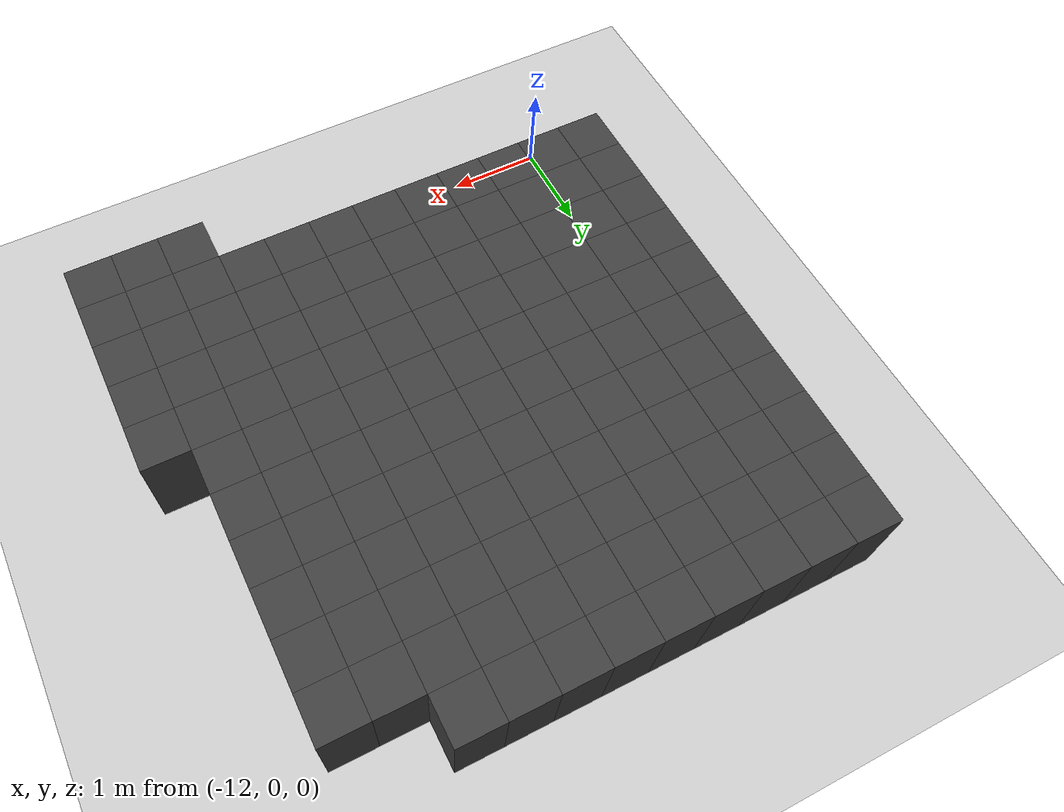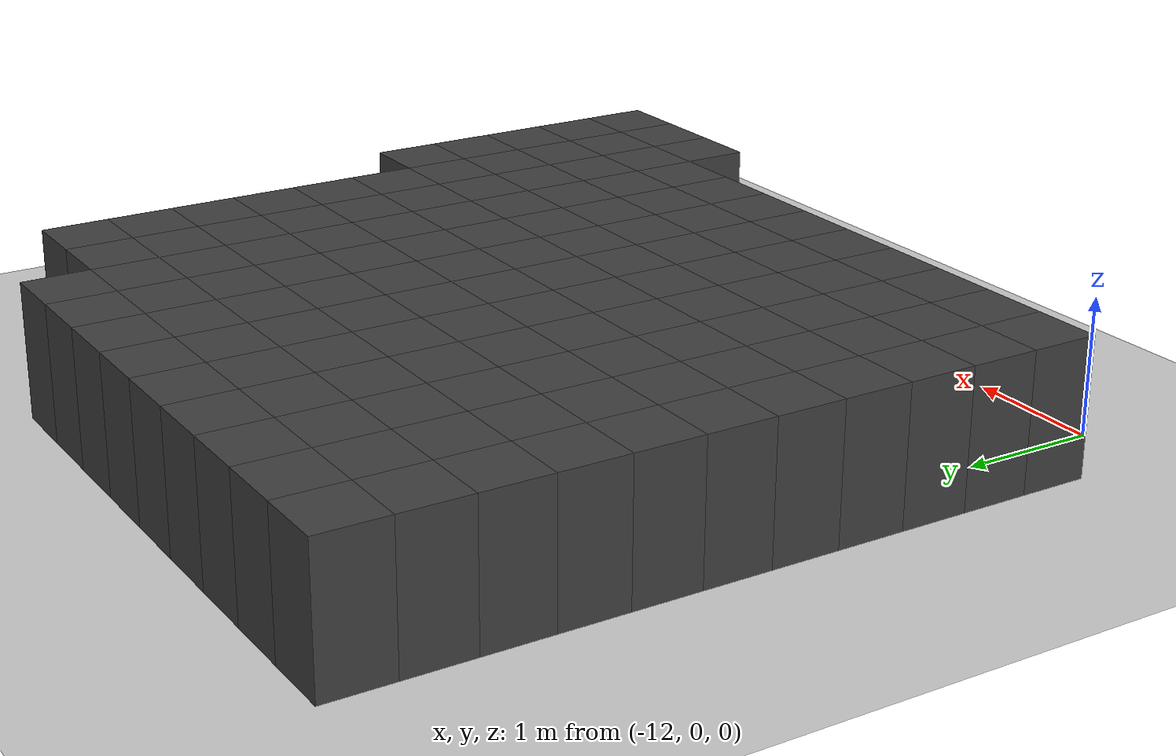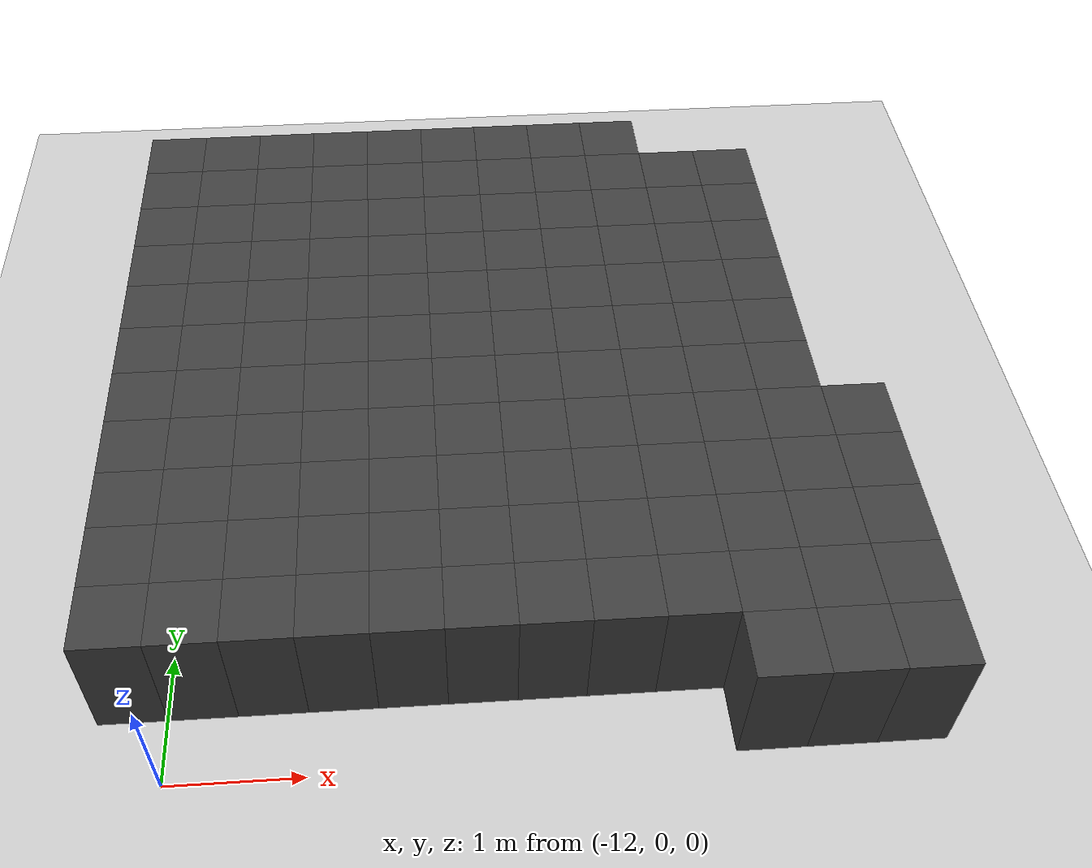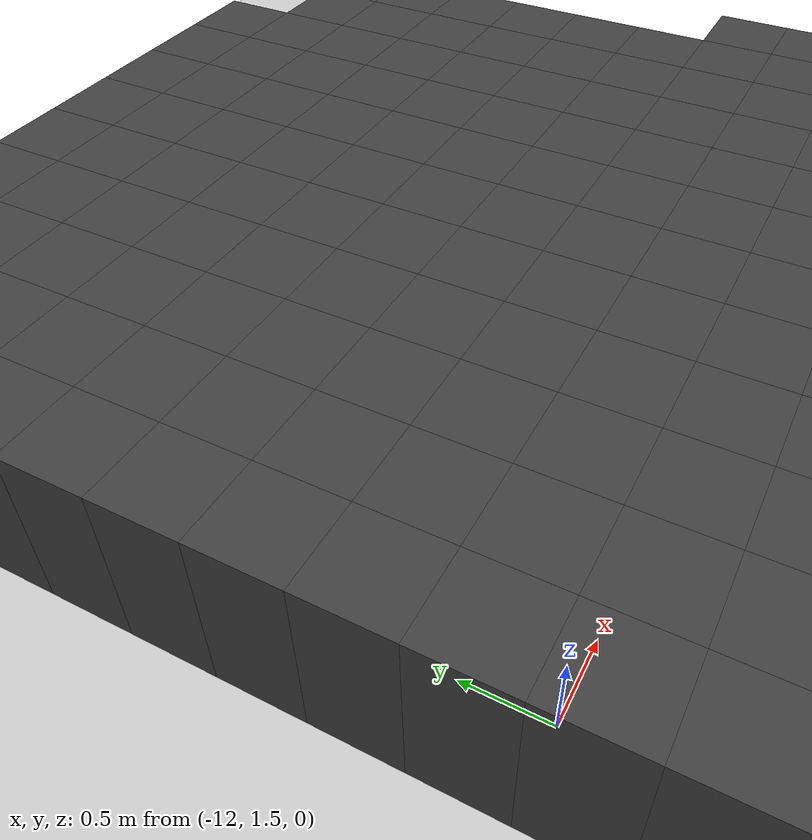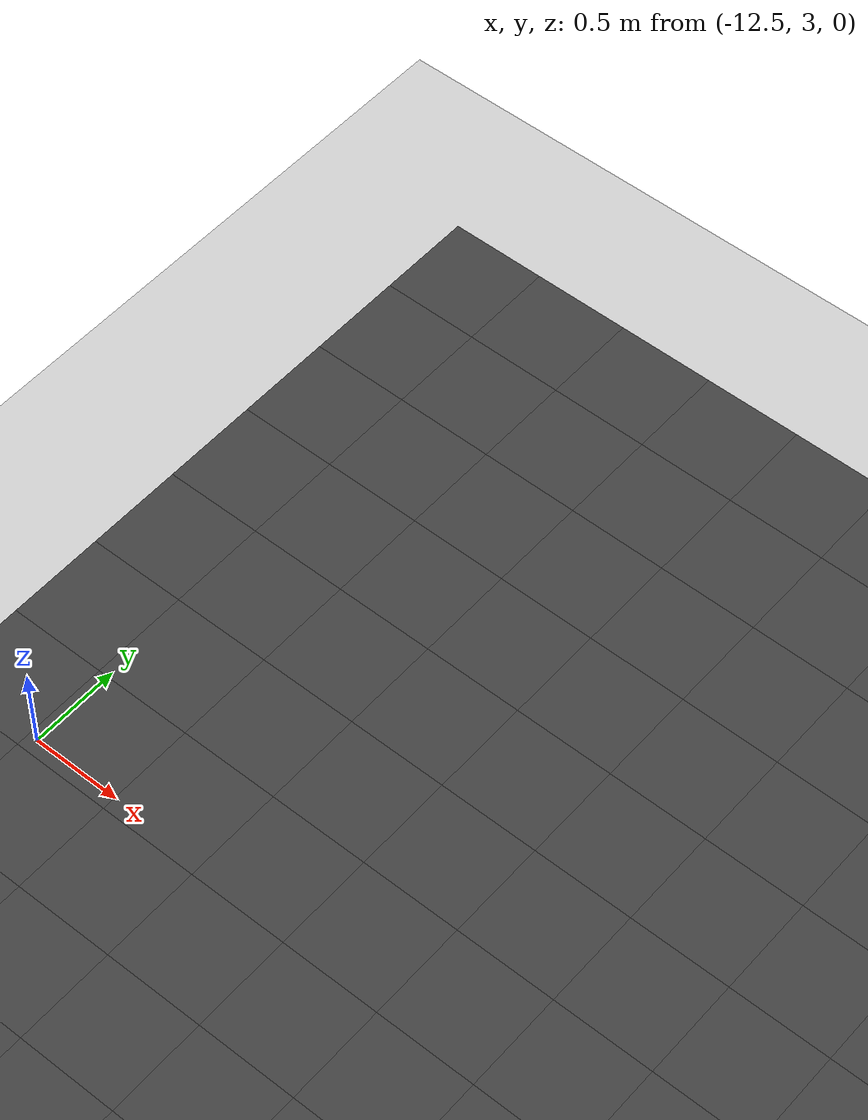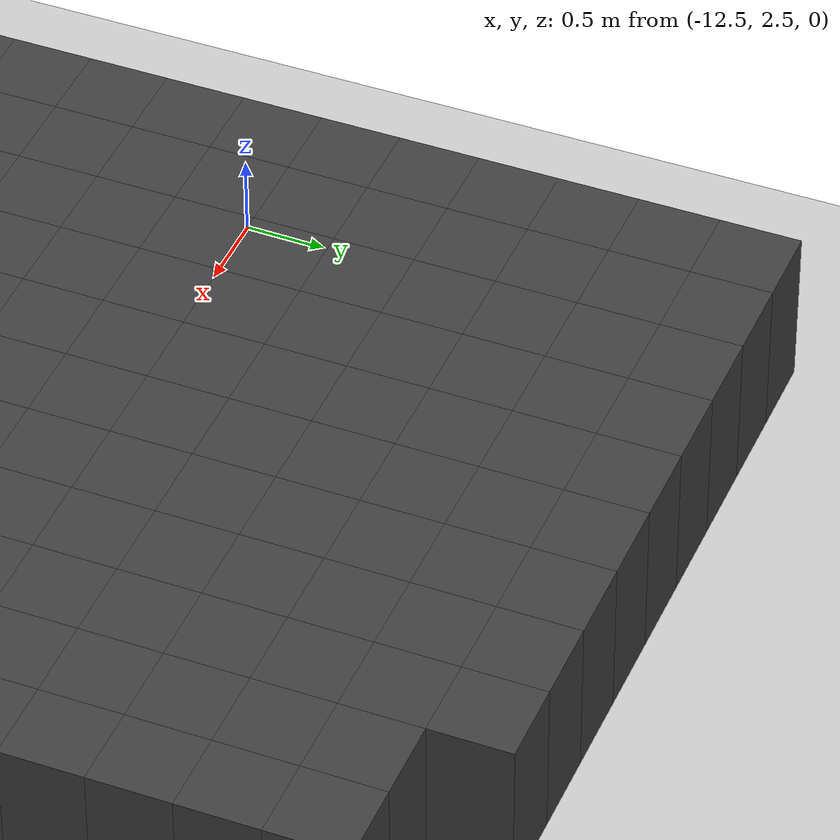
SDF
<sdf version="1.7">
 <world name="map_11779">
  <model name="ground_plane">
   <static>true</static>
   <link name="link">
    <collision name="collision">
     <geometry><plane><normal>0 0 1</normal><size>200 200</size></plane></geometry>
    </collision>
    <visual name="visual">
     <geometry><plane><normal>0 0 1</normal><size>200 200</size></plane></geometry>
     <material><ambient>0.8 0.8 0.8 1</ambient><diffuse>0.8 0.8 0.8 1</diffuse></material>
    </visual>
   </link>
  </model>
  <model name="maze_environment">
   <static>true</static>
   <link name="wall_538">
    <pose>-12.250 5.750 0.500 0 0 0</pose>
    <collision name="col"><geometry><box><size>0.5 0.5 1.0</size></box></geometry></collision>
    <visual name="vis">
     <geometry><box><size>0.5 0.5 1.0</size></box></geometry>
     <material><ambient>0.15 0.15 0.15 1</ambient><diffuse>0.25 0.25 0.25 1</diffuse></material>
    </visual>
   </link>
   <link name="wall_539">
    <pose>-11.750 5.750 0.500 0 0 0</pose>
    <collision name="col"><geometry><box><size>0.5 0.5 1.0</size></box></geometry></collision>
    <visual name="vis">
     <geometry><box><size>0.5 0.5 1.0</size></box></geometry>
     <material><ambient>0.15 0.15 0.15 1</ambient><diffuse>0.25 0.25 0.25 1</diffuse></material>
    </visual>
   </link>
   <link name="wall_540">
    <pose>-11.250 5.750 0.500 0 0 0</pose>
    <collision name="col"><geometry><box><size>0.5 0.5 1.0</size></box></geometry></collision>
    <visual name="vis">
     <geometry><box><size>0.5 0.5 1.0</size></box></geometry>
     <material><ambient>0.15 0.15 0.15 1</ambient><diffuse>0.25 0.25 0.25 1</diffuse></material>
    </visual>
   </link>
   <link name="wall_541">
    <pose>-10.750 5.750 0.500 0 0 0</pose>
    <collision name="col"><geometry><box><size>0.5 0.5 1.0</size></box></geometry></collision>
    <visual name="vis">
     <geometry><box><size>0.5 0.5 1.0</size></box></geometry>
     <material><ambient>0.15 0.15 0.15 1</ambient><diffuse>0.25 0.25 0.25 1</diffuse></material>
    </visual>
   </link>
   <link name="wall_542">
    <pose>-10.250 5.750 0.500 0 0 0</pose>
    <collision name="col"><geometry><box><size>0.5 0.5 1.0</size></box></geometry></collision>
    <visual name="vis">
     <geometry><box><size>0.5 0.5 1.0</size></box></geometry>
     <material><ambient>0.15 0.15 0.15 1</ambient><diffuse>0.25 0.25 0.25 1</diffuse></material>
    </visual>
   </link>
   <link name="wall_543">
    <pose>-9.750 5.750 0.500 0 0 0</pose>
    <collision name="col"><geometry><box><size>0.5 0.5 1.0</size></box></geometry></collision>
    <visual name="vis">
     <geometry><box><size>0.5 0.5 1.0</size></box></geometry>
     <material><ambient>0.15 0.15 0.15 1</ambient><diffuse>0.25 0.25 0.25 1</diffuse></material>
    </visual>
   </link>
   <link name="wall_544">
    <pose>-9.250 5.750 0.500 0 0 0</pose>
    <collision name="col"><geometry><box><size>0.5 0.5 1.0</size></box></geometry></collision>
    <visual name="vis">
     <geometry><box><size>0.5 0.5 1.0</size></box></geometry>
     <material><ambient>0.15 0.15 0.15 1</ambient><diffuse>0.25 0.25 0.25 1</diffuse></material>
    </visual>
   </link>
   <link name="wall_545">
    <pose>-8.750 5.750 0.500 0 0 0</pose>
    <collision name="col"><geometry><box><size>0.5 0.5 1.0</size></box></geometry></collision>
    <visual name="vis">
     <geometry><box><size>0.5 0.5 1.0</size></box></geometry>
     <material><ambient>0.15 0.15 0.15 1</ambient><diffuse>0.25 0.25 0.25 1</diffuse></material>
    </visual>
   </link>
   <link name="wall_546">
    <pose>-8.250 5.750 0.500 0 0 0</pose>
    <collision name="col"><geometry><box><size>0.5 0.5 1.0</size></box></geometry></collision>
    <visual name="vis">
     <geometry><box><size>0.5 0.5 1.0</size></box></geometry>
     <material><ambient>0.15 0.15 0.15 1</ambient><diffuse>0.25 0.25 0.25 1</diffuse></material>
    </visual>
   </link>
   <link name="wall_572">
    <pose>-12.250 5.250 0.500 0 0 0</pose>
    <collision name="col"><geometry><box><size>0.5 0.5 1.0</size></box></geometry></collision>
    <visual name="vis">
     <geometry><box><size>0.5 0.5 1.0</size></box></geometry>
     <material><ambient>0.15 0.15 0.15 1</ambient><diffuse>0.25 0.25 0.25 1</diffuse></material>
    </visual>
   </link>
   <link name="wall_573">
    <pose>-11.750 5.250 0.500 0 0 0</pose>
    <collision name="col"><geometry><box><size>0.5 0.5 1.0</size></box></geometry></collision>
    <visual name="vis">
     <geometry><box><size>0.5 0.5 1.0</size></box></geometry>
     <material><ambient>0.15 0.15 0.15 1</ambient><diffuse>0.25 0.25 0.25 1</diffuse></material>
    </visual>
   </link>
   <link name="wall_574">
    <pose>-11.250 5.250 0.500 0 0 0</pose>
    <collision name="col"><geometry><box><size>0.5 0.5 1.0</size></box></geometry></collision>
    <visual name="vis">
     <geometry><box><size>0.5 0.5 1.0</size></box></geometry>
     <material><ambient>0.15 0.15 0.15 1</ambient><diffuse>0.25 0.25 0.25 1</diffuse></material>
    </visual>
   </link>
   <link name="wall_575">
    <pose>-10.750 5.250 0.500 0 0 0</pose>
    <collision name="col"><geometry><box><size>0.5 0.5 1.0</size></box></geometry></collision>
    <visual name="vis">
     <geometry><box><size>0.5 0.5 1.0</size></box></geometry>
     <material><ambient>0.15 0.15 0.15 1</ambient><diffuse>0.25 0.25 0.25 1</diffuse></material>
    </visual>
   </link>
   <link name="wall_576">
    <pose>-10.250 5.250 0.500 0 0 0</pose>
    <collision name="col"><geometry><box><size>0.5 0.5 1.0</size></box></geometry></collision>
    <visual name="vis">
     <geometry><box><size>0.5 0.5 1.0</size></box></geometry>
     <material><ambient>0.15 0.15 0.15 1</ambient><diffuse>0.25 0.25 0.25 1</diffuse></material>
    </visual>
   </link>
   <link name="wall_577">
    <pose>-9.750 5.250 0.500 0 0 0</pose>
    <collision name="col"><geometry><box><size>0.5 0.5 1.0</size></box></geometry></collision>
    <visual name="vis">
     <geometry><box><size>0.5 0.5 1.0</size></box></geometry>
     <material><ambient>0.15 0.15 0.15 1</ambient><diffuse>0.25 0.25 0.25 1</diffuse></material>
    </visual>
   </link>
   <link name="wall_578">
    <pose>-9.250 5.250 0.500 0 0 0</pose>
    <collision name="col"><geometry><box><size>0.5 0.5 1.0</size></box></geometry></collision>
    <visual name="vis">
     <geometry><box><size>0.5 0.5 1.0</size></box></geometry>
     <material><ambient>0.15 0.15 0.15 1</ambient><diffuse>0.25 0.25 0.25 1</diffuse></material>
    </visual>
   </link>
   <link name="wall_579">
    <pose>-8.750 5.250 0.500 0 0 0</pose>
    <collision name="col"><geometry><box><size>0.5 0.5 1.0</size></box></geometry></collision>
    <visual name="vis">
     <geometry><box><size>0.5 0.5 1.0</size></box></geometry>
     <material><ambient>0.15 0.15 0.15 1</ambient><diffuse>0.25 0.25 0.25 1</diffuse></material>
    </visual>
   </link>
   <link name="wall_580">
    <pose>-8.250 5.250 0.500 0 0 0</pose>
    <collision name="col"><geometry><box><size>0.5 0.5 1.0</size></box></geometry></collision>
    <visual name="vis">
     <geometry><box><size>0.5 0.5 1.0</size></box></geometry>
     <material><ambient>0.15 0.15 0.15 1</ambient><diffuse>0.25 0.25 0.25 1</diffuse></material>
    </visual>
   </link>
   <link name="wall_581">
    <pose>-7.750 5.250 0.500 0 0 0</pose>
    <collision name="col"><geometry><box><size>0.5 0.5 1.0</size></box></geometry></collision>
    <visual name="vis">
     <geometry><box><size>0.5 0.5 1.0</size></box></geometry>
     <material><ambient>0.15 0.15 0.15 1</ambient><diffuse>0.25 0.25 0.25 1</diffuse></material>
    </visual>
   </link>
   <link name="wall_582">
    <pose>-7.250 5.250 0.500 0 0 0</pose>
    <collision name="col"><geometry><box><size>0.5 0.5 1.0</size></box></geometry></collision>
    <visual name="vis">
     <geometry><box><size>0.5 0.5 1.0</size></box></geometry>
     <material><ambient>0.15 0.15 0.15 1</ambient><diffuse>0.25 0.25 0.25 1</diffuse></material>
    </visual>
   </link>
   <link name="wall_606">
    <pose>-12.250 4.750 0.500 0 0 0</pose>
    <collision name="col"><geometry><box><size>0.5 0.5 1.0</size></box></geometry></collision>
    <visual name="vis">
     <geometry><box><size>0.5 0.5 1.0</size></box></geometry>
     <material><ambient>0.15 0.15 0.15 1</ambient><diffuse>0.25 0.25 0.25 1</diffuse></material>
    </visual>
   </link>
   <link name="wall_607">
    <pose>-11.750 4.750 0.500 0 0 0</pose>
    <collision name="col"><geometry><box><size>0.5 0.5 1.0</size></box></geometry></collision>
    <visual name="vis">
     <geometry><box><size>0.5 0.5 1.0</size></box></geometry>
     <material><ambient>0.15 0.15 0.15 1</ambient><diffuse>0.25 0.25 0.25 1</diffuse></material>
    </visual>
   </link>
   <link name="wall_608">
    <pose>-11.250 4.750 0.500 0 0 0</pose>
    <collision name="col"><geometry><box><size>0.5 0.5 1.0</size></box></geometry></collision>
    <visual name="vis">
     <geometry><box><size>0.5 0.5 1.0</size></box></geometry>
     <material><ambient>0.15 0.15 0.15 1</ambient><diffuse>0.25 0.25 0.25 1</diffuse></material>
    </visual>
   </link>
   <link name="wall_609">
    <pose>-10.750 4.750 0.500 0 0 0</pose>
    <collision name="col"><geometry><box><size>0.5 0.5 1.0</size></box></geometry></collision>
    <visual name="vis">
     <geometry><box><size>0.5 0.5 1.0</size></box></geometry>
     <material><ambient>0.15 0.15 0.15 1</ambient><diffuse>0.25 0.25 0.25 1</diffuse></material>
    </visual>
   </link>
   <link name="wall_610">
    <pose>-10.250 4.750 0.500 0 0 0</pose>
    <collision name="col"><geometry><box><size>0.5 0.5 1.0</size></box></geometry></collision>
    <visual name="vis">
     <geometry><box><size>0.5 0.5 1.0</size></box></geometry>
     <material><ambient>0.15 0.15 0.15 1</ambient><diffuse>0.25 0.25 0.25 1</diffuse></material>
    </visual>
   </link>
   <link name="wall_611">
    <pose>-9.750 4.750 0.500 0 0 0</pose>
    <collision name="col"><geometry><box><size>0.5 0.5 1.0</size></box></geometry></collision>
    <visual name="vis">
     <geometry><box><size>0.5 0.5 1.0</size></box></geometry>
     <material><ambient>0.15 0.15 0.15 1</ambient><diffuse>0.25 0.25 0.25 1</diffuse></material>
    </visual>
   </link>
   <link name="wall_612">
    <pose>-9.250 4.750 0.500 0 0 0</pose>
    <collision name="col"><geometry><box><size>0.5 0.5 1.0</size></box></geometry></collision>
    <visual name="vis">
     <geometry><box><size>0.5 0.5 1.0</size></box></geometry>
     <material><ambient>0.15 0.15 0.15 1</ambient><diffuse>0.25 0.25 0.25 1</diffuse></material>
    </visual>
   </link>
   <link name="wall_613">
    <pose>-8.750 4.750 0.500 0 0 0</pose>
    <collision name="col"><geometry><box><size>0.5 0.5 1.0</size></box></geometry></collision>
    <visual name="vis">
     <geometry><box><size>0.5 0.5 1.0</size></box></geometry>
     <material><ambient>0.15 0.15 0.15 1</ambient><diffuse>0.25 0.25 0.25 1</diffuse></material>
    </visual>
   </link>
   <link name="wall_614">
    <pose>-8.250 4.750 0.500 0 0 0</pose>
    <collision name="col"><geometry><box><size>0.5 0.5 1.0</size></box></geometry></collision>
    <visual name="vis">
     <geometry><box><size>0.5 0.5 1.0</size></box></geometry>
     <material><ambient>0.15 0.15 0.15 1</ambient><diffuse>0.25 0.25 0.25 1</diffuse></material>
    </visual>
   </link>
   <link name="wall_615">
    <pose>-7.750 4.750 0.500 0 0 0</pose>
    <collision name="col"><geometry><box><size>0.5 0.5 1.0</size></box></geometry></collision>
    <visual name="vis">
     <geometry><box><size>0.5 0.5 1.0</size></box></geometry>
     <material><ambient>0.15 0.15 0.15 1</ambient><diffuse>0.25 0.25 0.25 1</diffuse></material>
    </visual>
   </link>
   <link name="wall_616">
    <pose>-7.250 4.750 0.500 0 0 0</pose>
    <collision name="col"><geometry><box><size>0.5 0.5 1.0</size></box></geometry></collision>
    <visual name="vis">
     <geometry><box><size>0.5 0.5 1.0</size></box></geometry>
     <material><ambient>0.15 0.15 0.15 1</ambient><diffuse>0.25 0.25 0.25 1</diffuse></material>
    </visual>
   </link>
   <link name="wall_647">
    <pose>-12.250 4.250 0.500 0 0 0</pose>
    <collision name="col"><geometry><box><size>0.5 0.5 1.0</size></box></geometry></collision>
    <visual name="vis">
     <geometry><box><size>0.5 0.5 1.0</size></box></geometry>
     <material><ambient>0.15 0.15 0.15 1</ambient><diffuse>0.25 0.25 0.25 1</diffuse></material>
    </visual>
   </link>
   <link name="wall_648">
    <pose>-11.750 4.250 0.500 0 0 0</pose>
    <collision name="col"><geometry><box><size>0.5 0.5 1.0</size></box></geometry></collision>
    <visual name="vis">
     <geometry><box><size>0.5 0.5 1.0</size></box></geometry>
     <material><ambient>0.15 0.15 0.15 1</ambient><diffuse>0.25 0.25 0.25 1</diffuse></material>
    </visual>
   </link>
   <link name="wall_649">
    <pose>-11.250 4.250 0.500 0 0 0</pose>
    <collision name="col"><geometry><box><size>0.5 0.5 1.0</size></box></geometry></collision>
    <visual name="vis">
     <geometry><box><size>0.5 0.5 1.0</size></box></geometry>
     <material><ambient>0.15 0.15 0.15 1</ambient><diffuse>0.25 0.25 0.25 1</diffuse></material>
    </visual>
   </link>
   <link name="wall_650">
    <pose>-10.750 4.250 0.500 0 0 0</pose>
    <collision name="col"><geometry><box><size>0.5 0.5 1.0</size></box></geometry></collision>
    <visual name="vis">
     <geometry><box><size>0.5 0.5 1.0</size></box></geometry>
     <material><ambient>0.15 0.15 0.15 1</ambient><diffuse>0.25 0.25 0.25 1</diffuse></material>
    </visual>
   </link>
   <link name="wall_651">
    <pose>-10.250 4.250 0.500 0 0 0</pose>
    <collision name="col"><geometry><box><size>0.5 0.5 1.0</size></box></geometry></collision>
    <visual name="vis">
     <geometry><box><size>0.5 0.5 1.0</size></box></geometry>
     <material><ambient>0.15 0.15 0.15 1</ambient><diffuse>0.25 0.25 0.25 1</diffuse></material>
    </visual>
   </link>
   <link name="wall_652">
    <pose>-9.750 4.250 0.500 0 0 0</pose>
    <collision name="col"><geometry><box><size>0.5 0.5 1.0</size></box></geometry></collision>
    <visual name="vis">
     <geometry><box><size>0.5 0.5 1.0</size></box></geometry>
     <material><ambient>0.15 0.15 0.15 1</ambient><diffuse>0.25 0.25 0.25 1</diffuse></material>
    </visual>
   </link>
   <link name="wall_653">
    <pose>-9.250 4.250 0.500 0 0 0</pose>
    <collision name="col"><geometry><box><size>0.5 0.5 1.0</size></box></geometry></collision>
    <visual name="vis">
     <geometry><box><size>0.5 0.5 1.0</size></box></geometry>
     <material><ambient>0.15 0.15 0.15 1</ambient><diffuse>0.25 0.25 0.25 1</diffuse></material>
    </visual>
   </link>
   <link name="wall_654">
    <pose>-8.750 4.250 0.500 0 0 0</pose>
    <collision name="col"><geometry><box><size>0.5 0.5 1.0</size></box></geometry></collision>
    <visual name="vis">
     <geometry><box><size>0.5 0.5 1.0</size></box></geometry>
     <material><ambient>0.15 0.15 0.15 1</ambient><diffuse>0.25 0.25 0.25 1</diffuse></material>
    </visual>
   </link>
   <link name="wall_655">
    <pose>-8.250 4.250 0.500 0 0 0</pose>
    <collision name="col"><geometry><box><size>0.5 0.5 1.0</size></box></geometry></collision>
    <visual name="vis">
     <geometry><box><size>0.5 0.5 1.0</size></box></geometry>
     <material><ambient>0.15 0.15 0.15 1</ambient><diffuse>0.25 0.25 0.25 1</diffuse></material>
    </visual>
   </link>
   <link name="wall_656">
    <pose>-7.750 4.250 0.500 0 0 0</pose>
    <collision name="col"><geometry><box><size>0.5 0.5 1.0</size></box></geometry></collision>
    <visual name="vis">
     <geometry><box><size>0.5 0.5 1.0</size></box></geometry>
     <material><ambient>0.15 0.15 0.15 1</ambient><diffuse>0.25 0.25 0.25 1</diffuse></material>
    </visual>
   </link>
   <link name="wall_657">
    <pose>-7.250 4.250 0.500 0 0 0</pose>
    <collision name="col"><geometry><box><size>0.5 0.5 1.0</size></box></geometry></collision>
    <visual name="vis">
     <geometry><box><size>0.5 0.5 1.0</size></box></geometry>
     <material><ambient>0.15 0.15 0.15 1</ambient><diffuse>0.25 0.25 0.25 1</diffuse></material>
    </visual>
   </link>
   <link name="wall_688">
    <pose>-12.250 3.750 0.500 0 0 0</pose>
    <collision name="col"><geometry><box><size>0.5 0.5 1.0</size></box></geometry></collision>
    <visual name="vis">
     <geometry><box><size>0.5 0.5 1.0</size></box></geometry>
     <material><ambient>0.15 0.15 0.15 1</ambient><diffuse>0.25 0.25 0.25 1</diffuse></material>
    </visual>
   </link>
   <link name="wall_689">
    <pose>-11.750 3.750 0.500 0 0 0</pose>
    <collision name="col"><geometry><box><size>0.5 0.5 1.0</size></box></geometry></collision>
    <visual name="vis">
     <geometry><box><size>0.5 0.5 1.0</size></box></geometry>
     <material><ambient>0.15 0.15 0.15 1</ambient><diffuse>0.25 0.25 0.25 1</diffuse></material>
    </visual>
   </link>
   <link name="wall_690">
    <pose>-11.250 3.750 0.500 0 0 0</pose>
    <collision name="col"><geometry><box><size>0.5 0.5 1.0</size></box></geometry></collision>
    <visual name="vis">
     <geometry><box><size>0.5 0.5 1.0</size></box></geometry>
     <material><ambient>0.15 0.15 0.15 1</ambient><diffuse>0.25 0.25 0.25 1</diffuse></material>
    </visual>
   </link>
   <link name="wall_691">
    <pose>-10.750 3.750 0.500 0 0 0</pose>
    <collision name="col"><geometry><box><size>0.5 0.5 1.0</size></box></geometry></collision>
    <visual name="vis">
     <geometry><box><size>0.5 0.5 1.0</size></box></geometry>
     <material><ambient>0.15 0.15 0.15 1</ambient><diffuse>0.25 0.25 0.25 1</diffuse></material>
    </visual>
   </link>
   <link name="wall_692">
    <pose>-10.250 3.750 0.500 0 0 0</pose>
    <collision name="col"><geometry><box><size>0.5 0.5 1.0</size></box></geometry></collision>
    <visual name="vis">
     <geometry><box><size>0.5 0.5 1.0</size></box></geometry>
     <material><ambient>0.15 0.15 0.15 1</ambient><diffuse>0.25 0.25 0.25 1</diffuse></material>
    </visual>
   </link>
   <link name="wall_693">
    <pose>-9.750 3.750 0.500 0 0 0</pose>
    <collision name="col"><geometry><box><size>0.5 0.5 1.0</size></box></geometry></collision>
    <visual name="vis">
     <geometry><box><size>0.5 0.5 1.0</size></box></geometry>
     <material><ambient>0.15 0.15 0.15 1</ambient><diffuse>0.25 0.25 0.25 1</diffuse></material>
    </visual>
   </link>
   <link name="wall_694">
    <pose>-9.250 3.750 0.500 0 0 0</pose>
    <collision name="col"><geometry><box><size>0.5 0.5 1.0</size></box></geometry></collision>
    <visual name="vis">
     <geometry><box><size>0.5 0.5 1.0</size></box></geometry>
     <material><ambient>0.15 0.15 0.15 1</ambient><diffuse>0.25 0.25 0.25 1</diffuse></material>
    </visual>
   </link>
   <link name="wall_695">
    <pose>-8.750 3.750 0.500 0 0 0</pose>
    <collision name="col"><geometry><box><size>0.5 0.5 1.0</size></box></geometry></collision>
    <visual name="vis">
     <geometry><box><size>0.5 0.5 1.0</size></box></geometry>
     <material><ambient>0.15 0.15 0.15 1</ambient><diffuse>0.25 0.25 0.25 1</diffuse></material>
    </visual>
   </link>
   <link name="wall_696">
    <pose>-8.250 3.750 0.500 0 0 0</pose>
    <collision name="col"><geometry><box><size>0.5 0.5 1.0</size></box></geometry></collision>
    <visual name="vis">
     <geometry><box><size>0.5 0.5 1.0</size></box></geometry>
     <material><ambient>0.15 0.15 0.15 1</ambient><diffuse>0.25 0.25 0.25 1</diffuse></material>
    </visual>
   </link>
   <link name="wall_697">
    <pose>-7.750 3.750 0.500 0 0 0</pose>
    <collision name="col"><geometry><box><size>0.5 0.5 1.0</size></box></geometry></collision>
    <visual name="vis">
     <geometry><box><size>0.5 0.5 1.0</size></box></geometry>
     <material><ambient>0.15 0.15 0.15 1</ambient><diffuse>0.25 0.25 0.25 1</diffuse></material>
    </visual>
   </link>
   <link name="wall_698">
    <pose>-7.250 3.750 0.500 0 0 0</pose>
    <collision name="col"><geometry><box><size>0.5 0.5 1.0</size></box></geometry></collision>
    <visual name="vis">
     <geometry><box><size>0.5 0.5 1.0</size></box></geometry>
     <material><ambient>0.15 0.15 0.15 1</ambient><diffuse>0.25 0.25 0.25 1</diffuse></material>
    </visual>
   </link>
   <link name="wall_731">
    <pose>-12.250 3.250 0.500 0 0 0</pose>
    <collision name="col"><geometry><box><size>0.5 0.5 1.0</size></box></geometry></collision>
    <visual name="vis">
     <geometry><box><size>0.5 0.5 1.0</size></box></geometry>
     <material><ambient>0.15 0.15 0.15 1</ambient><diffuse>0.25 0.25 0.25 1</diffuse></material>
    </visual>
   </link>
   <link name="wall_732">
    <pose>-11.750 3.250 0.500 0 0 0</pose>
    <collision name="col"><geometry><box><size>0.5 0.5 1.0</size></box></geometry></collision>
    <visual name="vis">
     <geometry><box><size>0.5 0.5 1.0</size></box></geometry>
     <material><ambient>0.15 0.15 0.15 1</ambient><diffuse>0.25 0.25 0.25 1</diffuse></material>
    </visual>
   </link>
   <link name="wall_733">
    <pose>-11.250 3.250 0.500 0 0 0</pose>
    <collision name="col"><geometry><box><size>0.5 0.5 1.0</size></box></geometry></collision>
    <visual name="vis">
     <geometry><box><size>0.5 0.5 1.0</size></box></geometry>
     <material><ambient>0.15 0.15 0.15 1</ambient><diffuse>0.25 0.25 0.25 1</diffuse></material>
    </visual>
   </link>
   <link name="wall_734">
    <pose>-10.750 3.250 0.500 0 0 0</pose>
    <collision name="col"><geometry><box><size>0.5 0.5 1.0</size></box></geometry></collision>
    <visual name="vis">
     <geometry><box><size>0.5 0.5 1.0</size></box></geometry>
     <material><ambient>0.15 0.15 0.15 1</ambient><diffuse>0.25 0.25 0.25 1</diffuse></material>
    </visual>
   </link>
   <link name="wall_735">
    <pose>-10.250 3.250 0.500 0 0 0</pose>
    <collision name="col"><geometry><box><size>0.5 0.5 1.0</size></box></geometry></collision>
    <visual name="vis">
     <geometry><box><size>0.5 0.5 1.0</size></box></geometry>
     <material><ambient>0.15 0.15 0.15 1</ambient><diffuse>0.25 0.25 0.25 1</diffuse></material>
    </visual>
   </link>
   <link name="wall_736">
    <pose>-9.750 3.250 0.500 0 0 0</pose>
    <collision name="col"><geometry><box><size>0.5 0.5 1.0</size></box></geometry></collision>
    <visual name="vis">
     <geometry><box><size>0.5 0.5 1.0</size></box></geometry>
     <material><ambient>0.15 0.15 0.15 1</ambient><diffuse>0.25 0.25 0.25 1</diffuse></material>
    </visual>
   </link>
   <link name="wall_737">
    <pose>-9.250 3.250 0.500 0 0 0</pose>
    <collision name="col"><geometry><box><size>0.5 0.5 1.0</size></box></geometry></collision>
    <visual name="vis">
     <geometry><box><size>0.5 0.5 1.0</size></box></geometry>
     <material><ambient>0.15 0.15 0.15 1</ambient><diffuse>0.25 0.25 0.25 1</diffuse></material>
    </visual>
   </link>
   <link name="wall_738">
    <pose>-8.750 3.250 0.500 0 0 0</pose>
    <collision name="col"><geometry><box><size>0.5 0.5 1.0</size></box></geometry></collision>
    <visual name="vis">
     <geometry><box><size>0.5 0.5 1.0</size></box></geometry>
     <material><ambient>0.15 0.15 0.15 1</ambient><diffuse>0.25 0.25 0.25 1</diffuse></material>
    </visual>
   </link>
   <link name="wall_739">
    <pose>-8.250 3.250 0.500 0 0 0</pose>
    <collision name="col"><geometry><box><size>0.5 0.5 1.0</size></box></geometry></collision>
    <visual name="vis">
     <geometry><box><size>0.5 0.5 1.0</size></box></geometry>
     <material><ambient>0.15 0.15 0.15 1</ambient><diffuse>0.25 0.25 0.25 1</diffuse></material>
    </visual>
   </link>
   <link name="wall_740">
    <pose>-7.750 3.250 0.500 0 0 0</pose>
    <collision name="col"><geometry><box><size>0.5 0.5 1.0</size></box></geometry></collision>
    <visual name="vis">
     <geometry><box><size>0.5 0.5 1.0</size></box></geometry>
     <material><ambient>0.15 0.15 0.15 1</ambient><diffuse>0.25 0.25 0.25 1</diffuse></material>
    </visual>
   </link>
   <link name="wall_741">
    <pose>-7.250 3.250 0.500 0 0 0</pose>
    <collision name="col"><geometry><box><size>0.5 0.5 1.0</size></box></geometry></collision>
    <visual name="vis">
     <geometry><box><size>0.5 0.5 1.0</size></box></geometry>
     <material><ambient>0.15 0.15 0.15 1</ambient><diffuse>0.25 0.25 0.25 1</diffuse></material>
    </visual>
   </link>
   <link name="wall_774">
    <pose>-12.250 2.750 0.500 0 0 0</pose>
    <collision name="col"><geometry><box><size>0.5 0.5 1.0</size></box></geometry></collision>
    <visual name="vis">
     <geometry><box><size>0.5 0.5 1.0</size></box></geometry>
     <material><ambient>0.15 0.15 0.15 1</ambient><diffuse>0.25 0.25 0.25 1</diffuse></material>
    </visual>
   </link>
   <link name="wall_775">
    <pose>-11.750 2.750 0.500 0 0 0</pose>
    <collision name="col"><geometry><box><size>0.5 0.5 1.0</size></box></geometry></collision>
    <visual name="vis">
     <geometry><box><size>0.5 0.5 1.0</size></box></geometry>
     <material><ambient>0.15 0.15 0.15 1</ambient><diffuse>0.25 0.25 0.25 1</diffuse></material>
    </visual>
   </link>
   <link name="wall_776">
    <pose>-11.250 2.750 0.500 0 0 0</pose>
    <collision name="col"><geometry><box><size>0.5 0.5 1.0</size></box></geometry></collision>
    <visual name="vis">
     <geometry><box><size>0.5 0.5 1.0</size></box></geometry>
     <material><ambient>0.15 0.15 0.15 1</ambient><diffuse>0.25 0.25 0.25 1</diffuse></material>
    </visual>
   </link>
   <link name="wall_777">
    <pose>-10.750 2.750 0.500 0 0 0</pose>
    <collision name="col"><geometry><box><size>0.5 0.5 1.0</size></box></geometry></collision>
    <visual name="vis">
     <geometry><box><size>0.5 0.5 1.0</size></box></geometry>
     <material><ambient>0.15 0.15 0.15 1</ambient><diffuse>0.25 0.25 0.25 1</diffuse></material>
    </visual>
   </link>
   <link name="wall_778">
    <pose>-10.250 2.750 0.500 0 0 0</pose>
    <collision name="col"><geometry><box><size>0.5 0.5 1.0</size></box></geometry></collision>
    <visual name="vis">
     <geometry><box><size>0.5 0.5 1.0</size></box></geometry>
     <material><ambient>0.15 0.15 0.15 1</ambient><diffuse>0.25 0.25 0.25 1</diffuse></material>
    </visual>
   </link>
   <link name="wall_779">
    <pose>-9.750 2.750 0.500 0 0 0</pose>
    <collision name="col"><geometry><box><size>0.5 0.5 1.0</size></box></geometry></collision>
    <visual name="vis">
     <geometry><box><size>0.5 0.5 1.0</size></box></geometry>
     <material><ambient>0.15 0.15 0.15 1</ambient><diffuse>0.25 0.25 0.25 1</diffuse></material>
    </visual>
   </link>
   <link name="wall_780">
    <pose>-9.250 2.750 0.500 0 0 0</pose>
    <collision name="col"><geometry><box><size>0.5 0.5 1.0</size></box></geometry></collision>
    <visual name="vis">
     <geometry><box><size>0.5 0.5 1.0</size></box></geometry>
     <material><ambient>0.15 0.15 0.15 1</ambient><diffuse>0.25 0.25 0.25 1</diffuse></material>
    </visual>
   </link>
   <link name="wall_781">
    <pose>-8.750 2.750 0.500 0 0 0</pose>
    <collision name="col"><geometry><box><size>0.5 0.5 1.0</size></box></geometry></collision>
    <visual name="vis">
     <geometry><box><size>0.5 0.5 1.0</size></box></geometry>
     <material><ambient>0.15 0.15 0.15 1</ambient><diffuse>0.25 0.25 0.25 1</diffuse></material>
    </visual>
   </link>
   <link name="wall_782">
    <pose>-8.250 2.750 0.500 0 0 0</pose>
    <collision name="col"><geometry><box><size>0.5 0.5 1.0</size></box></geometry></collision>
    <visual name="vis">
     <geometry><box><size>0.5 0.5 1.0</size></box></geometry>
     <material><ambient>0.15 0.15 0.15 1</ambient><diffuse>0.25 0.25 0.25 1</diffuse></material>
    </visual>
   </link>
   <link name="wall_783">
    <pose>-7.750 2.750 0.500 0 0 0</pose>
    <collision name="col"><geometry><box><size>0.5 0.5 1.0</size></box></geometry></collision>
    <visual name="vis">
     <geometry><box><size>0.5 0.5 1.0</size></box></geometry>
     <material><ambient>0.15 0.15 0.15 1</ambient><diffuse>0.25 0.25 0.25 1</diffuse></material>
    </visual>
   </link>
   <link name="wall_784">
    <pose>-7.250 2.750 0.500 0 0 0</pose>
    <collision name="col"><geometry><box><size>0.5 0.5 1.0</size></box></geometry></collision>
    <visual name="vis">
     <geometry><box><size>0.5 0.5 1.0</size></box></geometry>
     <material><ambient>0.15 0.15 0.15 1</ambient><diffuse>0.25 0.25 0.25 1</diffuse></material>
    </visual>
   </link>
   <link name="wall_817">
    <pose>-12.250 2.250 0.500 0 0 0</pose>
    <collision name="col"><geometry><box><size>0.5 0.5 1.0</size></box></geometry></collision>
    <visual name="vis">
     <geometry><box><size>0.5 0.5 1.0</size></box></geometry>
     <material><ambient>0.15 0.15 0.15 1</ambient><diffuse>0.25 0.25 0.25 1</diffuse></material>
    </visual>
   </link>
   <link name="wall_818">
    <pose>-11.750 2.250 0.500 0 0 0</pose>
    <collision name="col"><geometry><box><size>0.5 0.5 1.0</size></box></geometry></collision>
    <visual name="vis">
     <geometry><box><size>0.5 0.5 1.0</size></box></geometry>
     <material><ambient>0.15 0.15 0.15 1</ambient><diffuse>0.25 0.25 0.25 1</diffuse></material>
    </visual>
   </link>
   <link name="wall_819">
    <pose>-11.250 2.250 0.500 0 0 0</pose>
    <collision name="col"><geometry><box><size>0.5 0.5 1.0</size></box></geometry></collision>
    <visual name="vis">
     <geometry><box><size>0.5 0.5 1.0</size></box></geometry>
     <material><ambient>0.15 0.15 0.15 1</ambient><diffuse>0.25 0.25 0.25 1</diffuse></material>
    </visual>
   </link>
   <link name="wall_820">
    <pose>-10.750 2.250 0.500 0 0 0</pose>
    <collision name="col"><geometry><box><size>0.5 0.5 1.0</size></box></geometry></collision>
    <visual name="vis">
     <geometry><box><size>0.5 0.5 1.0</size></box></geometry>
     <material><ambient>0.15 0.15 0.15 1</ambient><diffuse>0.25 0.25 0.25 1</diffuse></material>
    </visual>
   </link>
   <link name="wall_821">
    <pose>-10.250 2.250 0.500 0 0 0</pose>
    <collision name="col"><geometry><box><size>0.5 0.5 1.0</size></box></geometry></collision>
    <visual name="vis">
     <geometry><box><size>0.5 0.5 1.0</size></box></geometry>
     <material><ambient>0.15 0.15 0.15 1</ambient><diffuse>0.25 0.25 0.25 1</diffuse></material>
    </visual>
   </link>
   <link name="wall_822">
    <pose>-9.750 2.250 0.500 0 0 0</pose>
    <collision name="col"><geometry><box><size>0.5 0.5 1.0</size></box></geometry></collision>
    <visual name="vis">
     <geometry><box><size>0.5 0.5 1.0</size></box></geometry>
     <material><ambient>0.15 0.15 0.15 1</ambient><diffuse>0.25 0.25 0.25 1</diffuse></material>
    </visual>
   </link>
   <link name="wall_823">
    <pose>-9.250 2.250 0.500 0 0 0</pose>
    <collision name="col"><geometry><box><size>0.5 0.5 1.0</size></box></geometry></collision>
    <visual name="vis">
     <geometry><box><size>0.5 0.5 1.0</size></box></geometry>
     <material><ambient>0.15 0.15 0.15 1</ambient><diffuse>0.25 0.25 0.25 1</diffuse></material>
    </visual>
   </link>
   <link name="wall_824">
    <pose>-8.750 2.250 0.500 0 0 0</pose>
    <collision name="col"><geometry><box><size>0.5 0.5 1.0</size></box></geometry></collision>
    <visual name="vis">
     <geometry><box><size>0.5 0.5 1.0</size></box></geometry>
     <material><ambient>0.15 0.15 0.15 1</ambient><diffuse>0.25 0.25 0.25 1</diffuse></material>
    </visual>
   </link>
   <link name="wall_825">
    <pose>-8.250 2.250 0.500 0 0 0</pose>
    <collision name="col"><geometry><box><size>0.5 0.5 1.0</size></box></geometry></collision>
    <visual name="vis">
     <geometry><box><size>0.5 0.5 1.0</size></box></geometry>
     <material><ambient>0.15 0.15 0.15 1</ambient><diffuse>0.25 0.25 0.25 1</diffuse></material>
    </visual>
   </link>
   <link name="wall_826">
    <pose>-7.750 2.250 0.500 0 0 0</pose>
    <collision name="col"><geometry><box><size>0.5 0.5 1.0</size></box></geometry></collision>
    <visual name="vis">
     <geometry><box><size>0.5 0.5 1.0</size></box></geometry>
     <material><ambient>0.15 0.15 0.15 1</ambient><diffuse>0.25 0.25 0.25 1</diffuse></material>
    </visual>
   </link>
   <link name="wall_827">
    <pose>-7.250 2.250 0.500 0 0 0</pose>
    <collision name="col"><geometry><box><size>0.5 0.5 1.0</size></box></geometry></collision>
    <visual name="vis">
     <geometry><box><size>0.5 0.5 1.0</size></box></geometry>
     <material><ambient>0.15 0.15 0.15 1</ambient><diffuse>0.25 0.25 0.25 1</diffuse></material>
    </visual>
   </link>
   <link name="wall_828">
    <pose>-6.750 2.250 0.500 0 0 0</pose>
    <collision name="col"><geometry><box><size>0.5 0.5 1.0</size></box></geometry></collision>
    <visual name="vis">
     <geometry><box><size>0.5 0.5 1.0</size></box></geometry>
     <material><ambient>0.15 0.15 0.15 1</ambient><diffuse>0.25 0.25 0.25 1</diffuse></material>
    </visual>
   </link>
   <link name="wall_846">
    <pose>-12.250 1.750 0.500 0 0 0</pose>
    <collision name="col"><geometry><box><size>0.5 0.5 1.0</size></box></geometry></collision>
    <visual name="vis">
     <geometry><box><size>0.5 0.5 1.0</size></box></geometry>
     <material><ambient>0.15 0.15 0.15 1</ambient><diffuse>0.25 0.25 0.25 1</diffuse></material>
    </visual>
   </link>
   <link name="wall_847">
    <pose>-11.750 1.750 0.500 0 0 0</pose>
    <collision name="col"><geometry><box><size>0.5 0.5 1.0</size></box></geometry></collision>
    <visual name="vis">
     <geometry><box><size>0.5 0.5 1.0</size></box></geometry>
     <material><ambient>0.15 0.15 0.15 1</ambient><diffuse>0.25 0.25 0.25 1</diffuse></material>
    </visual>
   </link>
   <link name="wall_848">
    <pose>-11.250 1.750 0.500 0 0 0</pose>
    <collision name="col"><geometry><box><size>0.5 0.5 1.0</size></box></geometry></collision>
    <visual name="vis">
     <geometry><box><size>0.5 0.5 1.0</size></box></geometry>
     <material><ambient>0.15 0.15 0.15 1</ambient><diffuse>0.25 0.25 0.25 1</diffuse></material>
    </visual>
   </link>
   <link name="wall_849">
    <pose>-10.750 1.750 0.500 0 0 0</pose>
    <collision name="col"><geometry><box><size>0.5 0.5 1.0</size></box></geometry></collision>
    <visual name="vis">
     <geometry><box><size>0.5 0.5 1.0</size></box></geometry>
     <material><ambient>0.15 0.15 0.15 1</ambient><diffuse>0.25 0.25 0.25 1</diffuse></material>
    </visual>
   </link>
   <link name="wall_850">
    <pose>-10.250 1.750 0.500 0 0 0</pose>
    <collision name="col"><geometry><box><size>0.5 0.5 1.0</size></box></geometry></collision>
    <visual name="vis">
     <geometry><box><size>0.5 0.5 1.0</size></box></geometry>
     <material><ambient>0.15 0.15 0.15 1</ambient><diffuse>0.25 0.25 0.25 1</diffuse></material>
    </visual>
   </link>
   <link name="wall_851">
    <pose>-9.750 1.750 0.500 0 0 0</pose>
    <collision name="col"><geometry><box><size>0.5 0.5 1.0</size></box></geometry></collision>
    <visual name="vis">
     <geometry><box><size>0.5 0.5 1.0</size></box></geometry>
     <material><ambient>0.15 0.15 0.15 1</ambient><diffuse>0.25 0.25 0.25 1</diffuse></material>
    </visual>
   </link>
   <link name="wall_852">
    <pose>-9.250 1.750 0.500 0 0 0</pose>
    <collision name="col"><geometry><box><size>0.5 0.5 1.0</size></box></geometry></collision>
    <visual name="vis">
     <geometry><box><size>0.5 0.5 1.0</size></box></geometry>
     <material><ambient>0.15 0.15 0.15 1</ambient><diffuse>0.25 0.25 0.25 1</diffuse></material>
    </visual>
   </link>
   <link name="wall_853">
    <pose>-8.750 1.750 0.500 0 0 0</pose>
    <collision name="col"><geometry><box><size>0.5 0.5 1.0</size></box></geometry></collision>
    <visual name="vis">
     <geometry><box><size>0.5 0.5 1.0</size></box></geometry>
     <material><ambient>0.15 0.15 0.15 1</ambient><diffuse>0.25 0.25 0.25 1</diffuse></material>
    </visual>
   </link>
   <link name="wall_854">
    <pose>-8.250 1.750 0.500 0 0 0</pose>
    <collision name="col"><geometry><box><size>0.5 0.5 1.0</size></box></geometry></collision>
    <visual name="vis">
     <geometry><box><size>0.5 0.5 1.0</size></box></geometry>
     <material><ambient>0.15 0.15 0.15 1</ambient><diffuse>0.25 0.25 0.25 1</diffuse></material>
    </visual>
   </link>
   <link name="wall_855">
    <pose>-7.750 1.750 0.500 0 0 0</pose>
    <collision name="col"><geometry><box><size>0.5 0.5 1.0</size></box></geometry></collision>
    <visual name="vis">
     <geometry><box><size>0.5 0.5 1.0</size></box></geometry>
     <material><ambient>0.15 0.15 0.15 1</ambient><diffuse>0.25 0.25 0.25 1</diffuse></material>
    </visual>
   </link>
   <link name="wall_856">
    <pose>-7.250 1.750 0.500 0 0 0</pose>
    <collision name="col"><geometry><box><size>0.5 0.5 1.0</size></box></geometry></collision>
    <visual name="vis">
     <geometry><box><size>0.5 0.5 1.0</size></box></geometry>
     <material><ambient>0.15 0.15 0.15 1</ambient><diffuse>0.25 0.25 0.25 1</diffuse></material>
    </visual>
   </link>
   <link name="wall_857">
    <pose>-6.750 1.750 0.500 0 0 0</pose>
    <collision name="col"><geometry><box><size>0.5 0.5 1.0</size></box></geometry></collision>
    <visual name="vis">
     <geometry><box><size>0.5 0.5 1.0</size></box></geometry>
     <material><ambient>0.15 0.15 0.15 1</ambient><diffuse>0.25 0.25 0.25 1</diffuse></material>
    </visual>
   </link>
   <link name="wall_888">
    <pose>-12.250 1.250 0.500 0 0 0</pose>
    <collision name="col"><geometry><box><size>0.5 0.5 1.0</size></box></geometry></collision>
    <visual name="vis">
     <geometry><box><size>0.5 0.5 1.0</size></box></geometry>
     <material><ambient>0.15 0.15 0.15 1</ambient><diffuse>0.25 0.25 0.25 1</diffuse></material>
    </visual>
   </link>
   <link name="wall_889">
    <pose>-11.750 1.250 0.500 0 0 0</pose>
    <collision name="col"><geometry><box><size>0.5 0.5 1.0</size></box></geometry></collision>
    <visual name="vis">
     <geometry><box><size>0.5 0.5 1.0</size></box></geometry>
     <material><ambient>0.15 0.15 0.15 1</ambient><diffuse>0.25 0.25 0.25 1</diffuse></material>
    </visual>
   </link>
   <link name="wall_890">
    <pose>-11.250 1.250 0.500 0 0 0</pose>
    <collision name="col"><geometry><box><size>0.5 0.5 1.0</size></box></geometry></collision>
    <visual name="vis">
     <geometry><box><size>0.5 0.5 1.0</size></box></geometry>
     <material><ambient>0.15 0.15 0.15 1</ambient><diffuse>0.25 0.25 0.25 1</diffuse></material>
    </visual>
   </link>
   <link name="wall_891">
    <pose>-10.750 1.250 0.500 0 0 0</pose>
    <collision name="col"><geometry><box><size>0.5 0.5 1.0</size></box></geometry></collision>
    <visual name="vis">
     <geometry><box><size>0.5 0.5 1.0</size></box></geometry>
     <material><ambient>0.15 0.15 0.15 1</ambient><diffuse>0.25 0.25 0.25 1</diffuse></material>
    </visual>
   </link>
   <link name="wall_892">
    <pose>-10.250 1.250 0.500 0 0 0</pose>
    <collision name="col"><geometry><box><size>0.5 0.5 1.0</size></box></geometry></collision>
    <visual name="vis">
     <geometry><box><size>0.5 0.5 1.0</size></box></geometry>
     <material><ambient>0.15 0.15 0.15 1</ambient><diffuse>0.25 0.25 0.25 1</diffuse></material>
    </visual>
   </link>
   <link name="wall_893">
    <pose>-9.750 1.250 0.500 0 0 0</pose>
    <collision name="col"><geometry><box><size>0.5 0.5 1.0</size></box></geometry></collision>
    <visual name="vis">
     <geometry><box><size>0.5 0.5 1.0</size></box></geometry>
     <material><ambient>0.15 0.15 0.15 1</ambient><diffuse>0.25 0.25 0.25 1</diffuse></material>
    </visual>
   </link>
   <link name="wall_894">
    <pose>-9.250 1.250 0.500 0 0 0</pose>
    <collision name="col"><geometry><box><size>0.5 0.5 1.0</size></box></geometry></collision>
    <visual name="vis">
     <geometry><box><size>0.5 0.5 1.0</size></box></geometry>
     <material><ambient>0.15 0.15 0.15 1</ambient><diffuse>0.25 0.25 0.25 1</diffuse></material>
    </visual>
   </link>
   <link name="wall_895">
    <pose>-8.750 1.250 0.500 0 0 0</pose>
    <collision name="col"><geometry><box><size>0.5 0.5 1.0</size></box></geometry></collision>
    <visual name="vis">
     <geometry><box><size>0.5 0.5 1.0</size></box></geometry>
     <material><ambient>0.15 0.15 0.15 1</ambient><diffuse>0.25 0.25 0.25 1</diffuse></material>
    </visual>
   </link>
   <link name="wall_896">
    <pose>-8.250 1.250 0.500 0 0 0</pose>
    <collision name="col"><geometry><box><size>0.5 0.5 1.0</size></box></geometry></collision>
    <visual name="vis">
     <geometry><box><size>0.5 0.5 1.0</size></box></geometry>
     <material><ambient>0.15 0.15 0.15 1</ambient><diffuse>0.25 0.25 0.25 1</diffuse></material>
    </visual>
   </link>
   <link name="wall_897">
    <pose>-7.750 1.250 0.500 0 0 0</pose>
    <collision name="col"><geometry><box><size>0.5 0.5 1.0</size></box></geometry></collision>
    <visual name="vis">
     <geometry><box><size>0.5 0.5 1.0</size></box></geometry>
     <material><ambient>0.15 0.15 0.15 1</ambient><diffuse>0.25 0.25 0.25 1</diffuse></material>
    </visual>
   </link>
   <link name="wall_898">
    <pose>-7.250 1.250 0.500 0 0 0</pose>
    <collision name="col"><geometry><box><size>0.5 0.5 1.0</size></box></geometry></collision>
    <visual name="vis">
     <geometry><box><size>0.5 0.5 1.0</size></box></geometry>
     <material><ambient>0.15 0.15 0.15 1</ambient><diffuse>0.25 0.25 0.25 1</diffuse></material>
    </visual>
   </link>
   <link name="wall_899">
    <pose>-6.750 1.250 0.500 0 0 0</pose>
    <collision name="col"><geometry><box><size>0.5 0.5 1.0</size></box></geometry></collision>
    <visual name="vis">
     <geometry><box><size>0.5 0.5 1.0</size></box></geometry>
     <material><ambient>0.15 0.15 0.15 1</ambient><diffuse>0.25 0.25 0.25 1</diffuse></material>
    </visual>
   </link>
   <link name="wall_930">
    <pose>-12.250 0.750 0.500 0 0 0</pose>
    <collision name="col"><geometry><box><size>0.5 0.5 1.0</size></box></geometry></collision>
    <visual name="vis">
     <geometry><box><size>0.5 0.5 1.0</size></box></geometry>
     <material><ambient>0.15 0.15 0.15 1</ambient><diffuse>0.25 0.25 0.25 1</diffuse></material>
    </visual>
   </link>
   <link name="wall_931">
    <pose>-11.750 0.750 0.500 0 0 0</pose>
    <collision name="col"><geometry><box><size>0.5 0.5 1.0</size></box></geometry></collision>
    <visual name="vis">
     <geometry><box><size>0.5 0.5 1.0</size></box></geometry>
     <material><ambient>0.15 0.15 0.15 1</ambient><diffuse>0.25 0.25 0.25 1</diffuse></material>
    </visual>
   </link>
   <link name="wall_932">
    <pose>-11.250 0.750 0.500 0 0 0</pose>
    <collision name="col"><geometry><box><size>0.5 0.5 1.0</size></box></geometry></collision>
    <visual name="vis">
     <geometry><box><size>0.5 0.5 1.0</size></box></geometry>
     <material><ambient>0.15 0.15 0.15 1</ambient><diffuse>0.25 0.25 0.25 1</diffuse></material>
    </visual>
   </link>
   <link name="wall_933">
    <pose>-10.750 0.750 0.500 0 0 0</pose>
    <collision name="col"><geometry><box><size>0.5 0.5 1.0</size></box></geometry></collision>
    <visual name="vis">
     <geometry><box><size>0.5 0.5 1.0</size></box></geometry>
     <material><ambient>0.15 0.15 0.15 1</ambient><diffuse>0.25 0.25 0.25 1</diffuse></material>
    </visual>
   </link>
   <link name="wall_934">
    <pose>-10.250 0.750 0.500 0 0 0</pose>
    <collision name="col"><geometry><box><size>0.5 0.5 1.0</size></box></geometry></collision>
    <visual name="vis">
     <geometry><box><size>0.5 0.5 1.0</size></box></geometry>
     <material><ambient>0.15 0.15 0.15 1</ambient><diffuse>0.25 0.25 0.25 1</diffuse></material>
    </visual>
   </link>
   <link name="wall_935">
    <pose>-9.750 0.750 0.500 0 0 0</pose>
    <collision name="col"><geometry><box><size>0.5 0.5 1.0</size></box></geometry></collision>
    <visual name="vis">
     <geometry><box><size>0.5 0.5 1.0</size></box></geometry>
     <material><ambient>0.15 0.15 0.15 1</ambient><diffuse>0.25 0.25 0.25 1</diffuse></material>
    </visual>
   </link>
   <link name="wall_936">
    <pose>-9.250 0.750 0.500 0 0 0</pose>
    <collision name="col"><geometry><box><size>0.5 0.5 1.0</size></box></geometry></collision>
    <visual name="vis">
     <geometry><box><size>0.5 0.5 1.0</size></box></geometry>
     <material><ambient>0.15 0.15 0.15 1</ambient><diffuse>0.25 0.25 0.25 1</diffuse></material>
    </visual>
   </link>
   <link name="wall_937">
    <pose>-8.750 0.750 0.500 0 0 0</pose>
    <collision name="col"><geometry><box><size>0.5 0.5 1.0</size></box></geometry></collision>
    <visual name="vis">
     <geometry><box><size>0.5 0.5 1.0</size></box></geometry>
     <material><ambient>0.15 0.15 0.15 1</ambient><diffuse>0.25 0.25 0.25 1</diffuse></material>
    </visual>
   </link>
   <link name="wall_938">
    <pose>-8.250 0.750 0.500 0 0 0</pose>
    <collision name="col"><geometry><box><size>0.5 0.5 1.0</size></box></geometry></collision>
    <visual name="vis">
     <geometry><box><size>0.5 0.5 1.0</size></box></geometry>
     <material><ambient>0.15 0.15 0.15 1</ambient><diffuse>0.25 0.25 0.25 1</diffuse></material>
    </visual>
   </link>
   <link name="wall_939">
    <pose>-7.750 0.750 0.500 0 0 0</pose>
    <collision name="col"><geometry><box><size>0.5 0.5 1.0</size></box></geometry></collision>
    <visual name="vis">
     <geometry><box><size>0.5 0.5 1.0</size></box></geometry>
     <material><ambient>0.15 0.15 0.15 1</ambient><diffuse>0.25 0.25 0.25 1</diffuse></material>
    </visual>
   </link>
   <link name="wall_940">
    <pose>-7.250 0.750 0.500 0 0 0</pose>
    <collision name="col"><geometry><box><size>0.5 0.5 1.0</size></box></geometry></collision>
    <visual name="vis">
     <geometry><box><size>0.5 0.5 1.0</size></box></geometry>
     <material><ambient>0.15 0.15 0.15 1</ambient><diffuse>0.25 0.25 0.25 1</diffuse></material>
    </visual>
   </link>
   <link name="wall_941">
    <pose>-6.750 0.750 0.500 0 0 0</pose>
    <collision name="col"><geometry><box><size>0.5 0.5 1.0</size></box></geometry></collision>
    <visual name="vis">
     <geometry><box><size>0.5 0.5 1.0</size></box></geometry>
     <material><ambient>0.15 0.15 0.15 1</ambient><diffuse>0.25 0.25 0.25 1</diffuse></material>
    </visual>
   </link>
   <link name="wall_981">
    <pose>-7.750 0.250 0.500 0 0 0</pose>
    <collision name="col"><geometry><box><size>0.5 0.5 1.0</size></box></geometry></collision>
    <visual name="vis">
     <geometry><box><size>0.5 0.5 1.0</size></box></geometry>
     <material><ambient>0.15 0.15 0.15 1</ambient><diffuse>0.25 0.25 0.25 1</diffuse></material>
    </visual>
   </link>
   <link name="wall_982">
    <pose>-7.250 0.250 0.500 0 0 0</pose>
    <collision name="col"><geometry><box><size>0.5 0.5 1.0</size></box></geometry></collision>
    <visual name="vis">
     <geometry><box><size>0.5 0.5 1.0</size></box></geometry>
     <material><ambient>0.15 0.15 0.15 1</ambient><diffuse>0.25 0.25 0.25 1</diffuse></material>
    </visual>
   </link>
   <link name="wall_983">
    <pose>-6.750 0.250 0.500 0 0 0</pose>
    <collision name="col"><geometry><box><size>0.5 0.5 1.0</size></box></geometry></collision>
    <visual name="vis">
     <geometry><box><size>0.5 0.5 1.0</size></box></geometry>
     <material><ambient>0.15 0.15 0.15 1</ambient><diffuse>0.25 0.25 0.25 1</diffuse></material>
    </visual>
   </link>
  </model>
 </world>
</sdf>
